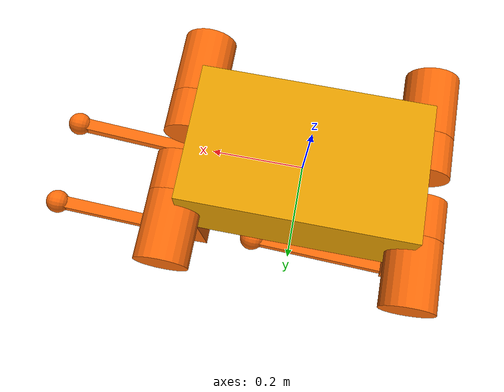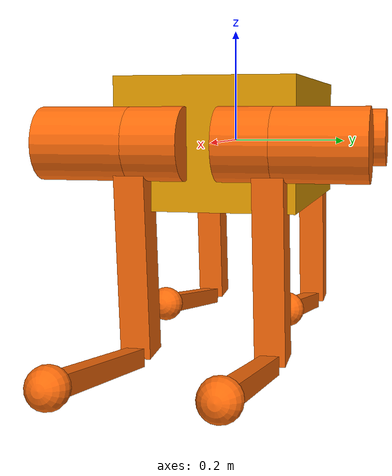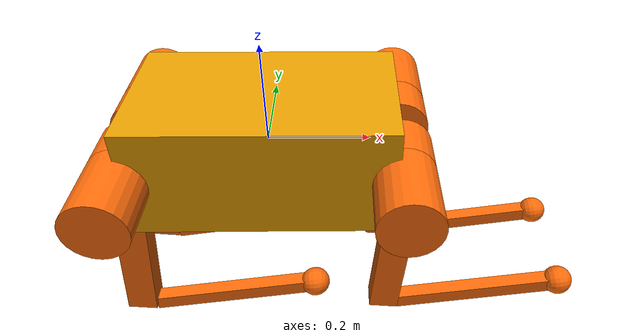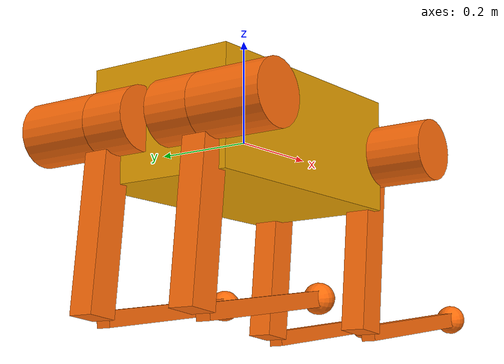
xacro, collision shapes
<?xml version="1.0"?>

<robot xmlns:xacro="http://www.ros.org/wiki/xacro" name="robot">

    <xacro:arg name="robot_type" default="a1"/>
    <xacro:arg name="controller_params_file" default=""/>

    <xacro:include filename="$(find legged_description)/urdf/common/materials.xacro"/>
    <xacro:include filename="$(find legged_description)/urdf/common/leg.xacro"/>
    <xacro:include filename="$(find legged_description)/urdf/common/gazebo.xacro"/>
    <xacro:include filename="$(find legged_description)/urdf/common/imu.xacro"/>
    <xacro:include filename="$(find legged_description)/urdf/common/ros2_control.xacro"/>

    <xacro:include filename="$(find legged_description)/urdf/$(arg robot_type)/const.xacro"/>

    <xacro:arg name="hardware_plugin" default="legged_unitree_hw/UnitreeHW_3_8_0"/>
    <xacro:arg name="power_limit" default="4"/>
    <xacro:arg name="contact_threshold" default="40"/>
    <xacro:arg name="delay" default="0.009"/>

    <xacro:property name="mesh_path" value="file://$(find legged_description)/meshes/$(arg robot_type)"/>

    <link name="base">
        <visual>
            <origin rpy="0 0 0" xyz="0 0 0"/>
            <geometry>
                <mesh filename="${mesh_path}/trunk.dae" scale="1 1 1"/>
            </geometry>
        </visual>
        <collision>
            <origin rpy="0 0 0" xyz="0 0 0"/>
            <geometry>
                <box size="${trunk_length} ${trunk_width} ${trunk_height}"/>
            </geometry>
        </collision>
        <inertial>
            <origin rpy="0 0 0" xyz="${trunk_com_x} ${trunk_com_y} ${trunk_com_z}"/>
            <mass value="${trunk_mass}"/>
            <inertia
                    ixx="${trunk_ixx}" ixy="${trunk_ixy}" ixz="${trunk_ixz}"
                    iyy="${trunk_iyy}" iyz="${trunk_iyz}"
                    izz="${trunk_izz}"/>
        </inertial>
    </link>

    <xacro:IMU connected_to="base" imu_name="base_imu" xyz="0. 0. 0." rpy="0. 0. 0."/>

    <xacro:leg prefix="LF" mesh_path="${mesh_path}" mirror="1" mirror_dae="True" front_hind="1" front_hind_dae="True">
        <origin rpy="0 0 0" xyz="${leg_offset_x} ${leg_offset_y} 0"/>
    </xacro:leg>

    <xacro:leg prefix="LH" mesh_path="${mesh_path}" mirror="1" mirror_dae="True" front_hind="-1" front_hind_dae="False">
        <origin rpy="0 0 0" xyz="${-leg_offset_x} ${leg_offset_y} 0"/>
    </xacro:leg>

    <xacro:leg prefix="RF" mesh_path="${mesh_path}" mirror="-1" mirror_dae="False" front_hind="1" front_hind_dae="True">
        <origin rpy="0 0 0" xyz="${leg_offset_x} ${-leg_offset_y} 0"/>
    </xacro:leg>

    <xacro:leg prefix="RH" mesh_path="${mesh_path}" mirror="-1" mirror_dae="False" front_hind="-1" front_hind_dae="False">
        <origin rpy="0 0 0" xyz="${-leg_offset_x} ${-leg_offset_y} 0"/>
    </xacro:leg>

    <xacro:legged_ros2_control hardware_plugin="$(arg hardware_plugin)"
                                       robot_type="$(arg robot_type)"
                                       power_limit="$(arg power_limit)"
                                       contact_threshold="$(arg contact_threshold)"
                                       delay="$(arg delay)"/>

</robot>

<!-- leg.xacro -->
<robot xmlns:xacro="http://www.ros.org/wiki/xacro">

    <xacro:include filename="$(find legged_description)/urdf/common/transmission.xacro"/>

    <xacro:macro name="leg" params="prefix mesh_path mirror mirror_dae front_hind front_hind_dae *origin">

        <joint name="${prefix}_HAA" type="revolute">
            <xacro:insert_block name="origin"/>
            <parent link="base"/>
            <child link="${prefix}_hip"/>
            <axis xyz="1 0 0"/>
            <dynamics damping="${damping}" friction="${friction}"/>
            <xacro:if value="${(mirror_dae == True)}">
                <limit effort="${hip_torque_max}" velocity="${hip_velocity_max}" lower="${hip_position_min}"
                       upper="${hip_position_max}"/>
            </xacro:if>
            <xacro:if value="${(mirror_dae == False)}">
                <limit effort="${hip_torque_max}" velocity="${hip_velocity_max}" lower="${-hip_position_max}"
                       upper="${-hip_position_min}"/>
            </xacro:if>
        </joint>

        <link name="${prefix}_hip">
            <visual>
                <xacro:if value="${(mirror_dae == True) and (front_hind_dae == True)}">
                    <origin rpy="0 0 0" xyz="0 0 0"/>
                </xacro:if>
                <xacro:if value="${(mirror_dae == False) and (front_hind_dae == True)}">
                    <origin rpy="${pi} 0 0" xyz="0 0 0"/>
                </xacro:if>
                <xacro:if value="${(mirror_dae == True) and (front_hind_dae == False)}">
                    <origin rpy="0 ${pi} 0" xyz="0 0 0"/>
                </xacro:if>
                <xacro:if value="${(mirror_dae == False) and (front_hind_dae == False)}">
                    <origin rpy="${pi} ${pi} 0" xyz="0 0 0"/>
                </xacro:if>
                <geometry>
                    <mesh filename="${mesh_path}/hip.dae"
                          scale="1 1 1"/>
                </geometry>
                <material name="orange"/>
            </visual>
            <collision>
                <origin rpy="${pi/2.0} 0 0" xyz="0 0 0"/>
                <geometry>
                    <cylinder length="${hip_length}" radius="${hip_radius}"/>
                </geometry>
            </collision>
            <inertial>
                <origin rpy="0 0 0" xyz="${hip_com_x*front_hind} ${hip_com_y*mirror} ${hip_com_z}"/>
                <mass value="${hip_mass}"/>
                <inertia
                        ixx="${hip_ixx}" ixy="${hip_ixy*mirror*front_hind}" ixz="${hip_ixz*front_hind}"
                        iyy="${hip_iyy}" iyz="${hip_iyz*mirror}"
                        izz="${hip_izz}"/>
            </inertial>
        </link>

        <joint name="${prefix}_HFE" type="revolute">
            <origin rpy="0 0 0" xyz="0 ${thigh_offset*mirror} 0"/>
            <parent link="${prefix}_hip"/>
            <child link="${prefix}_thigh"/>
            <axis xyz="0 1 0"/>
            <dynamics damping="${damping}" friction="${friction}"/>
            <limit effort="${thigh_torque_max}" velocity="${thigh_velocity_max}" lower="${thigh_position_min}"
                   upper="${thigh_position_max}"/>
        </joint>

        <link name="${prefix}_thigh">
            <visual>
                <origin rpy="0 0 0" xyz="0 0 0"/>
                <geometry>
                    <xacro:if value="${mirror_dae == True}">
                        <mesh filename="${mesh_path}/thigh.dae"
                              scale="1 1 1"/>
                    </xacro:if>
                    <xacro:if value="${mirror_dae == False}">
                        <mesh filename="${mesh_path}/thigh_mirror.dae"
                              scale="1 1 1"/>
                    </xacro:if>
                </geometry>
                <material name="orange"/>
            </visual>
            <collision>
                <origin rpy="0 ${pi/2.0+0.1} 0" xyz="${thigh_x_offset} 0 ${-thigh_length/2.0}"/>
                <geometry>
                    <box size="${thigh_length} ${thigh_width} ${thigh_height}"/>
                </geometry>
            </collision>
            <collision>
                <origin rpy="${pi/2.0} 0 0" xyz="0 ${mirror*thigh_shoulder_y_offset} 0"/>
                <geometry>
                    <cylinder length="${thigh_shoulder_length}" radius="${thigh_shoulder_radius}"/>
                </geometry>
            </collision>
            <inertial>
                <origin rpy="0 0 0" xyz="${thigh_com_x} ${thigh_com_y*mirror} ${thigh_com_z}"/>
                <mass value="${thigh_mass}"/>
                <inertia
                        ixx="${thigh_ixx}" ixy="${thigh_ixy*mirror}" ixz="${thigh_ixz}"
                        iyy="${thigh_iyy}" iyz="${thigh_iyz*mirror}"
                        izz="${thigh_izz}"/>
            </inertial>
        </link>

        <joint name="${prefix}_KFE" type="revolute">
            <origin rpy="0 0 0" xyz="0 0 ${-thigh_length}"/>
            <parent link="${prefix}_thigh"/>
            <child link="${prefix}_calf"/>
            <axis xyz="0 1 0"/>
            <dynamics damping="${damping}" friction="${friction}"/>
            <limit effort="${calf_torque_max}" velocity="${calf_velocity_max}" lower="${calf_position_min}" upper="${calf_position_max}"/>
        </joint>

        <link name="${prefix}_calf">
            <visual>
                <origin rpy="0 0 0" xyz="0 0 0"/>
                <geometry>
                    <mesh filename="${mesh_path}/calf.dae"
                          scale="1 1 1"/>
                </geometry>
                <material name="orange"/>
            </visual>
            <collision>
                <origin rpy="0 ${pi/2.0} 0" xyz="${calf_x_offset} 0 ${-calf_length/2.0}"/>
                <geometry>
                    <box size="${calf_length} ${calf_width} ${calf_height}"/>
                </geometry>
            </collision>
            <inertial>
                <origin rpy="0 0 0" xyz="${calf_com_x} ${calf_com_y} ${calf_com_z}"/>
                <mass value="${calf_mass}"/>
                <inertia
                        ixx="${calf_ixx}" ixy="${calf_ixy}" ixz="${calf_ixz}"
                        iyy="${calf_iyy}" iyz="${calf_iyz}"
                        izz="${calf_izz}"/>
            </inertial>
        </link>

        <joint name="${prefix}_foot_fixed" type="fixed" dont_collapse="true">
            <origin rpy="0 0 0" xyz="0 0 ${-(calf_length)}"/>
            <parent link="${prefix}_calf"/>
            <child link="${prefix}_FOOT"/>
        </joint>

        <link name="${prefix}_FOOT">
            <visual>
                <origin rpy="0 0 0" xyz="0 0 0"/>
                <geometry>
                    <sphere radius="${foot_radius-0.01}"/>
                </geometry>
                <material name="orange"/>
            </visual>
            <collision>
                <origin rpy="0 0 0" xyz="0 0 0"/>
                <geometry>
                    <sphere radius="${foot_radius}"/>
                </geometry>
            </collision>
            <inertial>
                <mass value="${foot_mass}"/>
                <inertia
                        ixx="${(2*foot_mass)/5.0*(foot_radius*foot_radius)}" ixy="0.0" ixz="0.0"
                        iyy="${(2*foot_mass)/5.0*(foot_radius*foot_radius)}" iyz="0.0"
                        izz="${(2*foot_mass)/5.0*(foot_radius*foot_radius)}"/>
            </inertial>
        </link>

        <gazebo reference="${prefix}_foot_fixed">
            <disableFixedJointLumping>true</disableFixedJointLumping>
        </gazebo>

        <gazebo reference="${prefix}_hip">
            <mu1>0.2</mu1>
            <mu2>0.2</mu2>
            <material>Gazebo/DarkGrey</material>
        </gazebo>
        <gazebo reference="${prefix}_thigh">
            <mu1>0.2</mu1>
            <mu2>0.2</mu2>
            <self_collide>0</self_collide>
            <material>Gazebo/DarkGrey</material>
            <kp value="1000000.0"/>
            <kd value="100.0"/>
        </gazebo>
        <gazebo reference="${prefix}_calf">
            <mu1>0.6</mu1>
            <mu2>0.6</mu2>
            <self_collide>1</self_collide>
        </gazebo>
        <gazebo reference="${prefix}_FOOT">
            <mu1>0.6</mu1>
            <mu2>0.6</mu2>
            <self_collide>1</self_collide>
            <material>Gazebo/DarkGrey</material>
            <kp value="1000000.0"/>
            <kd value="100.0"/>
        </gazebo>

        <xacro:leg_transmission name="${prefix}"/>
    </xacro:macro>
</robot>

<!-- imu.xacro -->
<robot xmlns:xacro="http://www.ros.org/wiki/xacro" name="imu">
    <xacro:macro name="IMU" params="connected_to imu_name xyz:='0 0 0' rpy:='0 0 0' ">
        <!-- Imu is fixed to the base link -->
        <joint name="${imu_name}_joint" type="fixed">
            <origin xyz="${xyz}" rpy="${rpy}"/>
            <parent link="${connected_to}"/>
            <child link="${imu_name}"/>
        </joint>
        <!-- Imu link -->
        <link name="${imu_name}">
            <inertial>
                <mass value="0.01"/>
                <origin rpy="0 0 0" xyz="0 0 0"/>
                <inertia ixx="0.000001" ixy="0" ixz="0" iyy="0.000001" iyz="0" izz="0.000001"/>
            </inertial>
            <visual>
                <origin rpy="0 0 0" xyz="0 0 0"/>
                <geometry>
                    <box size="0.015 0.015 0.004"/>
                </geometry>
            </visual>
            <material name="orange">
                <color rgba="255 108 10 255"/>
            </material>
        </link>
        <gazebo reference="${imu_name}">
            <material>Gazebo/Orange</material>
            <sensor name="${imu_name}_sensor" type="imu">
                <always_on>true</always_on>
                <update_rate>200</update_rate>
                <plugin name="${imu_name}_plugin" filename="libgazebo_ros_imu_sensor.so">
                    <ros>
                        <namespace>/</namespace>
                        <remapping>~/out:=imu</remapping>
                    </ros>
                    <frame_name>${imu_name}</frame_name>
                </plugin>
            </sensor>
        </gazebo>
        <gazebo reference="${imu_name}_joint">
            <disableFixedJointLumping>true</disableFixedJointLumping>
        </gazebo>
    </xacro:macro>
</robot>

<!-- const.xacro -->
<robot xmlns:xacro="http://www.ros.org/wiki/xacro" name="p1_description">

    <!-- Constants for robot dimensions -->
    <xacro:property name="stick_mass" value="0.00001"/>

    <!-- simplified collision value -->
    <xacro:property name="trunk_width" value="0.3"/>
    <xacro:property name="trunk_length" value="0.5"/>
    <xacro:property name="trunk_height" value="0.22"/>
    <xacro:property name="hip_radius" value="0.06"/>
    <xacro:property name="hip_length" value="0.09"/>
    <xacro:property name="thigh_shoulder_radius" value="0.06"/>
    <xacro:property name="thigh_shoulder_length" value="0.15"/>
    <xacro:property name="thigh_shoulder_y_offset" value="0.08"/>

    <xacro:property name="thigh_width" value="0.05"/>
    <xacro:property name="thigh_height" value="0.06"/>
    <xacro:property name="thigh_x_offset" value="-0.01"/>
    <xacro:property name="thigh_y_offset" value="0.13"/>
    <xacro:property name="calf_width" value="0.03"/>
    <xacro:property name="calf_height" value="0.03"/>
    <xacro:property name="calf_x_offset" value="0.0"/>
    <xacro:property name="foot_radius" value="0.03"/>

    <!-- kinematic value (aligned with lr_p1.urdf joint origins) -->
    <!-- HFE: hip->thigh uses lateral thigh_offset (y) and hip_thigh_offset_x (x, sign via front_hind) -->
    <xacro:property name="thigh_offset" value="0.0395"/>
    <xacro:property name="hip_thigh_offset_x" value="0.089"/>
    <!-- KFE: thigh->calf y offset before -thigh_length along z -->
    <xacro:property name="knee_offset_y" value="0.1323"/>
    <xacro:property name="thigh_length" value="0.35"/>
    <xacro:property name="calf_length" value="0.35"/>

    <!-- leg offset from trunk center value -->
    <xacro:property name="leg_offset_x" value="0.259"/>
    <xacro:property name="leg_offset_y" value="0.072"/>
    <xacro:property name="trunk_offset_z" value="0.0"/>
    <xacro:property name="hip_offset" value="0.0395"/>

    <!-- joint limits -->
    <xacro:property name="damping" value="0"/>
    <xacro:property name="friction" value="0"/>
    <xacro:property name="hip_position_max" value="0.698"/>
    <xacro:property name="hip_position_min" value="-0.698"/>
    <xacro:property name="hip_velocity_max" value="12"/>
    <xacro:property name="hip_torque_max" value="220"/>
    <xacro:property name="thigh_position_max" value="2.840"/>
    <xacro:property name="thigh_position_min" value="-2.840"/>
    <xacro:property name="thigh_velocity_max" value="12"/>
    <xacro:property name="thigh_torque_max" value="220"/>
    <xacro:property name="calf_position_max" value="-0.68067"/>
    <xacro:property name="calf_position_min" value="-2.76634"/>
    <xacro:property name="calf_velocity_max" value="12"/>
    <xacro:property name="calf_torque_max" value="280"/>

    <!-- dynamics inertial value -->
    <!-- trunk -->
    <xacro:property name="trunk_mass" value="41.55318666"/>
    <xacro:property name="trunk_com_x" value="0.0036196"/>
    <xacro:property name="trunk_com_y" value="0.0020766"/>
    <xacro:property name="trunk_com_z" value="0.014291"/>
    <xacro:property name="trunk_ixx" value="0.36609753"/>
    <xacro:property name="trunk_ixy" value="-0.00244571"/>
    <xacro:property name="trunk_ixz" value="-0.06601466"/>
    <xacro:property name="trunk_iyy" value="1.65137460"/>
    <xacro:property name="trunk_iyz" value="0.00028196"/>
    <xacro:property name="trunk_izz" value="1.78840665"/>

    <!-- hip (left front) -->
    <xacro:property name="hip_mass" value="3.14861814"/>
    <xacro:property name="hip_com_x" value="0.059894"/>
    <xacro:property name="hip_com_y" value="0.012203"/>
    <xacro:property name="hip_com_z" value="-0.00002491"/>
    <xacro:property name="hip_ixx" value="0.00150762"/>
    <xacro:property name="hip_ixy" value="0.00003652"/>
    <xacro:property name="hip_ixz" value="0.00000078"/>
    <xacro:property name="hip_iyy" value="0.00308821"/>
    <xacro:property name="hip_iyz" value="-0.00000116"/>
    <xacro:property name="hip_izz" value="0.00282044"/>

    <!-- thigh -->
    <xacro:property name="thigh_mass" value="4.62267861"/>
    <xacro:property name="thigh_com_x" value="-0.0095977"/>
    <xacro:property name="thigh_com_y" value="0.11103"/>
    <xacro:property name="thigh_com_z" value="-0.088387"/>
    <xacro:property name="thigh_ixx" value="0.05234465"/>
    <xacro:property name="thigh_ixy" value="0.00083785"/>
    <xacro:property name="thigh_ixz" value="-0.00317648"/>
    <xacro:property name="thigh_iyy" value="0.04965056"/>
    <xacro:property name="thigh_iyz" value="0.00756963"/>
    <xacro:property name="thigh_izz" value="0.00794928"/>

    <!-- calf -->
    <xacro:property name="calf_mass" value="0.65025"/>
    <xacro:property name="calf_com_x" value="0.02051"/>
    <xacro:property name="calf_com_y" value="0.0000082897"/>
    <xacro:property name="calf_com_z" value="-0.17043"/>
    <xacro:property name="calf_ixx" value="0.01003897"/>
    <xacro:property name="calf_ixy" value="0.00000002"/>
    <xacro:property name="calf_ixz" value="0.00071564"/>
    <xacro:property name="calf_iyy" value="0.01022625"/>
    <xacro:property name="calf_iyz" value="-0.00000074"/>
    <xacro:property name="calf_izz" value="0.00032368"/>

    <!-- foot -->
    <xacro:property name="foot_mass" value="0.17599"/>

</robot>
